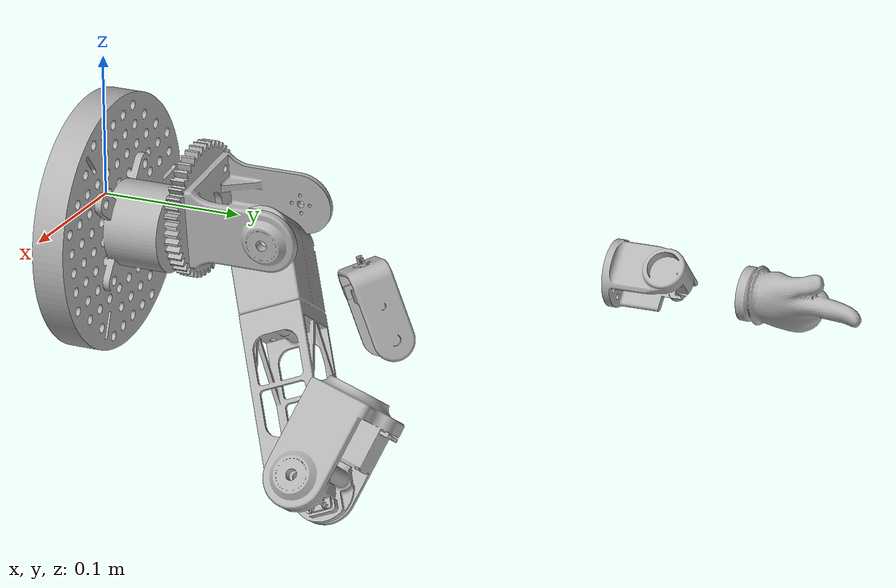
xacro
<?xml version="1.0" ?>
<robot name="manipulator" xmlns:xacro="http://www.ros.org/wiki/xacro">

<xacro:include filename="$(find manipulator_description)/urdf/materials.xacro" />
<xacro:include filename="$(find manipulator_description)/urdf/manipulator.trans" />
<xacro:include filename="$(find manipulator_description)/urdf/manipulator.gazebo" />
<link name="base_link">
  <inertial>
    <origin xyz="0.0 0.0 0.0" rpy="0 0 0"/>
    <mass value="0.0"/>
    <inertia ixx="0.0" iyy="0.0" izz="0.0" ixy="0.0" iyz="0.0" ixz="0.0"/>
  </inertial>
  <visual>
    <origin xyz="0 0 0" rpy="0 0 0"/>
    <geometry>
      <mesh filename="file://$(find manipulator_description)/meshes/base_link.stl" scale="0.001 0.001 0.001"/>
    </geometry>
    <material name="silver"/>
  </visual>
  <collision>
    <origin xyz="0 0 0" rpy="0 0 0"/>
    <geometry>
      <mesh filename="file://$(find manipulator_description)/meshes/base_link.stl" scale="0.001 0.001 0.001"/>
    </geometry>
  </collision>
</link>

<link name="link_1_1">
  <inertial>
    <origin xyz="-0.002447 -0.063 -0.001614" rpy="0 0 0"/>
    <mass value="0.0"/>
    <inertia ixx="0.0" iyy="0.0" izz="0.0" ixy="0.0" iyz="0.0" ixz="0.0"/>
  </inertial>
  <visual>
    <origin xyz="-0.002447 -0.063 -0.001614" rpy="0 0 0"/>
    <geometry>
      <mesh filename="file://$(find manipulator_description)/meshes/link_1_1.stl" scale="0.001 0.001 0.001"/>
    </geometry>
    <material name="silver"/>
  </visual>
  <collision>
    <origin xyz="-0.002447 -0.063 -0.001614" rpy="0 0 0"/>
    <geometry>
      <mesh filename="file://$(find manipulator_description)/meshes/link_1_1.stl" scale="0.001 0.001 0.001"/>
    </geometry>
  </collision>
</link>

<link name="link_2_1">
  <inertial>
    <origin xyz="-0.002253 -0.078512 -0.004446" rpy="0 0 0"/>
    <mass value="0.0"/>
    <inertia ixx="0.0" iyy="0.0" izz="0.0" ixy="0.0" iyz="0.0" ixz="0.0"/>
  </inertial>
  <visual>
    <origin xyz="-0.002253 -0.078512 -0.004446" rpy="0 0 0"/>
    <geometry>
      <mesh filename="file://$(find manipulator_description)/meshes/link_2_1.stl" scale="0.001 0.001 0.001"/>
    </geometry>
    <material name="silver"/>
  </visual>
  <collision>
    <origin xyz="-0.002253 -0.078512 -0.004446" rpy="0 0 0"/>
    <geometry>
      <mesh filename="file://$(find manipulator_description)/meshes/link_2_1.stl" scale="0.001 0.001 0.001"/>
    </geometry>
  </collision>
</link>

<link name="link_3_1">
  <inertial>
    <origin xyz="0.050046 -0.244073 -0.034207" rpy="0 0 0"/>
    <mass value="0.0"/>
    <inertia ixx="0.0" iyy="0.0" izz="0.0" ixy="0.0" iyz="0.0" ixz="0.0"/>
  </inertial>
  <visual>
    <origin xyz="0.050046 -0.244073 -0.034207" rpy="0 0 0"/>
    <geometry>
      <mesh filename="file://$(find manipulator_description)/meshes/link_3_1.stl" scale="0.001 0.001 0.001"/>
    </geometry>
    <material name="silver"/>
  </visual>
  <collision>
    <origin xyz="0.050046 -0.244073 -0.034207" rpy="0 0 0"/>
    <geometry>
      <mesh filename="file://$(find manipulator_description)/meshes/link_3_1.stl" scale="0.001 0.001 0.001"/>
    </geometry>
  </collision>
</link>

<link name="link_4_1">
  <inertial>
    <origin xyz="0.07012 -0.305037 0.001482" rpy="0 0 0"/>
    <mass value="0.0"/>
    <inertia ixx="0.0" iyy="0.0" izz="0.0" ixy="0.0" iyz="0.0" ixz="0.0"/>
  </inertial>
  <visual>
    <origin xyz="0.07012 -0.305037 0.001482" rpy="0 0 0"/>
    <geometry>
      <mesh filename="file://$(find manipulator_description)/meshes/link_4_1.stl" scale="0.001 0.001 0.001"/>
    </geometry>
    <material name="silver"/>
  </visual>
  <collision>
    <origin xyz="0.07012 -0.305037 0.001482" rpy="0 0 0"/>
    <geometry>
      <mesh filename="file://$(find manipulator_description)/meshes/link_4_1.stl" scale="0.001 0.001 0.001"/>
    </geometry>
  </collision>
</link>

<link name="link_5_1">
  <inertial>
    <origin xyz="0.035771108084248326 0.11289293638447143 -0.05402003742237102" rpy="0 0 0"/>
    <mass value="0.1597609646775879"/>
    <inertia ixx="5.6e-05" iyy="0.000103" izz="5.1e-05" ixy="-1e-06" iyz="-0.0" ixz="-5e-06"/>
  </inertial>
  <visual>
    <origin xyz="0.174242 -0.19174 -0.050084" rpy="0 0 0"/>
    <geometry>
      <mesh filename="file://$(find manipulator_description)/meshes/link_5_1.stl" scale="0.001 0.001 0.001"/>
    </geometry>
    <material name="silver"/>
  </visual>
  <collision>
    <origin xyz="0.174242 -0.19174 -0.050084" rpy="0 0 0"/>
    <geometry>
      <mesh filename="file://$(find manipulator_description)/meshes/link_5_1.stl" scale="0.001 0.001 0.001"/>
    </geometry>
  </collision>
</link>

<link name="efector_1">
  <inertial>
    <origin xyz="-0.031776908676389964 0.0007717709374218673 -0.002161999027492591" rpy="0 0 0"/>
    <mass value="0.3963549799563405"/>
    <inertia ixx="8e-05" iyy="0.000155" izz="0.00012" ixy="3e-06" iyz="-1e-06" ixz="4e-06"/>
  </inertial>
  <visual>
    <origin xyz="0.162881 -0.305491 0.006983" rpy="0 0 0"/>
    <geometry>
      <mesh filename="file://$(find manipulator_description)/meshes/efector_1.stl" scale="0.001 0.001 0.001"/>
    </geometry>
    <material name="silver"/>
  </visual>
  <collision>
    <origin xyz="0.162881 -0.305491 0.006983" rpy="0 0 0"/>
    <geometry>
      <mesh filename="file://$(find manipulator_description)/meshes/efector_1.stl" scale="0.001 0.001 0.001"/>
    </geometry>
  </collision>
</link>

<joint name="joint_base_to_1" type="continuous">
  <origin xyz="0.002447 0.063 0.001614" rpy="0 0 0"/>
  <parent link="base_link"/>
  <child link="link_1_1"/>
  <axis xyz="0.0 1.0 0.0"/>
</joint>

<joint name="joint_1_to_2" type="continuous">
  <origin xyz="-0.000194 0.015512 0.002832" rpy="0 0 0"/>
  <parent link="link_1_1"/>
  <child link="link_2_1"/>
  <axis xyz="0.044167 0.0 -0.999024"/>
</joint>

<joint name="joint_2_to_3" type="continuous">
  <origin xyz="-0.052299 0.165561 0.029761" rpy="0 0 0"/>
  <parent link="link_2_1"/>
  <child link="link_3_1"/>
  <axis xyz="-0.044167 -0.0 0.999024"/>
</joint>

<joint name="joint_3_to_4" type="continuous">
  <origin xyz="-0.020074 0.060964 -0.035689" rpy="0 0 0"/>
  <parent link="link_3_1"/>
  <child link="link_4_1"/>
  <axis xyz="0.999021 0.002653 0.044167"/>
</joint>

<joint name="joint_4_to_5" type="continuous">
  <origin xyz="-0.104122 -0.113297 0.051566" rpy="0 0 0"/>
  <parent link="link_4_1"/>
  <child link="link_5_1"/>
  <axis xyz="0.044191 -0.009603 -0.998977"/>
</joint>

<joint name="joint_5_to_eff" type="continuous">
  <origin xyz="0.011361 0.113751 -0.057067" rpy="0 0 0"/>
  <parent link="link_5_1"/>
  <child link="efector_1"/>
  <axis xyz="0.998995 -0.007126 0.04426"/>
</joint>

</robot>

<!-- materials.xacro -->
<robot name="manipulator_final_before_export" xmlns:xacro="http://www.ros.org/wiki/xacro" >

<material name="silver">
  <color rgba="0.700 0.700 0.700 1.000"/>
</material>

</robot>

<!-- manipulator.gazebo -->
<robot name="manipulator_final_before_export" xmlns:xacro="http://www.ros.org/wiki/xacro" >

<xacro:property name="body_color" value="Gazebo/Silver" />

<gazebo>
  <plugin name="control" filename="libgazebo_ros_control.so"/>
</gazebo>
<gazebo reference="base_link">
  <material>${body_color}</material>
  <mu1>0.2</mu1>
  <mu2>0.2</mu2>
  <selfCollide>true</selfCollide>
  <gravity>true</gravity>
</gazebo>

<gazebo reference="link_1_1">
  <material>${body_color}</material>
  <mu1>0.2</mu1>
  <mu2>0.2</mu2>
  <selfCollide>true</selfCollide>
</gazebo>

<gazebo reference="link_2_1">
  <material>${body_color}</material>
  <mu1>0.2</mu1>
  <mu2>0.2</mu2>
  <selfCollide>true</selfCollide>
</gazebo>

<gazebo reference="link_3_1">
  <material>${body_color}</material>
  <mu1>0.2</mu1>
  <mu2>0.2</mu2>
  <selfCollide>true</selfCollide>
</gazebo>

<gazebo reference="link_4_1">
  <material>${body_color}</material>
  <mu1>0.2</mu1>
  <mu2>0.2</mu2>
  <selfCollide>true</selfCollide>
</gazebo>

<gazebo reference="link_5_1">
  <material>${body_color}</material>
  <mu1>0.2</mu1>
  <mu2>0.2</mu2>
  <selfCollide>true</selfCollide>
</gazebo>

<gazebo reference="efector_1">
  <material>${body_color}</material>
  <mu1>0.2</mu1>
  <mu2>0.2</mu2>
  <selfCollide>true</selfCollide>
</gazebo>

</robot>
